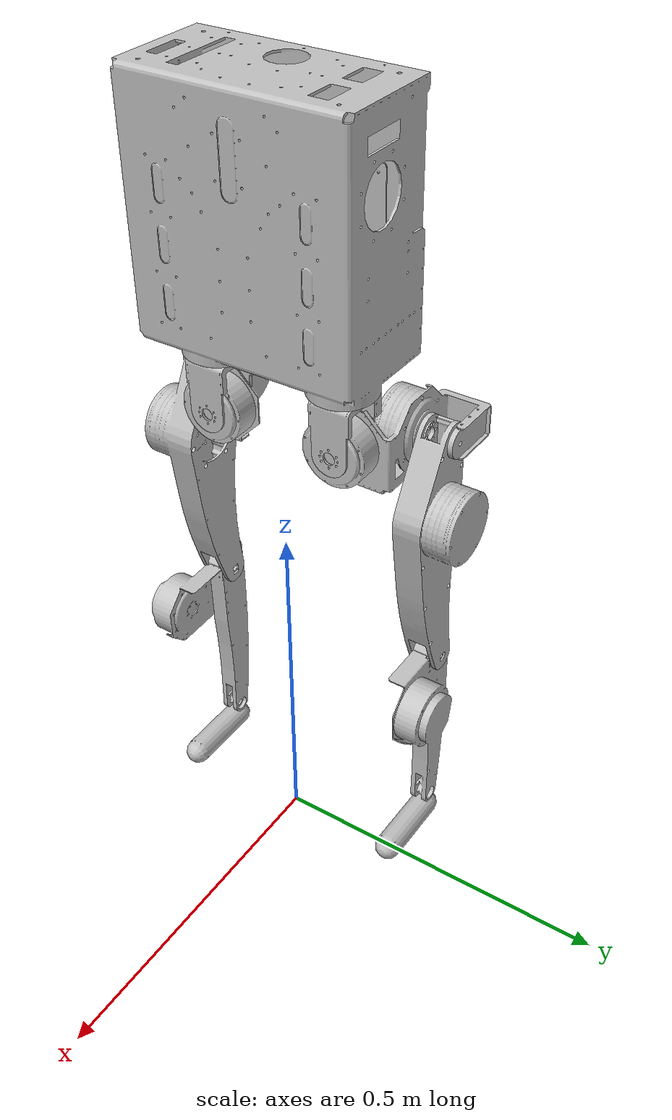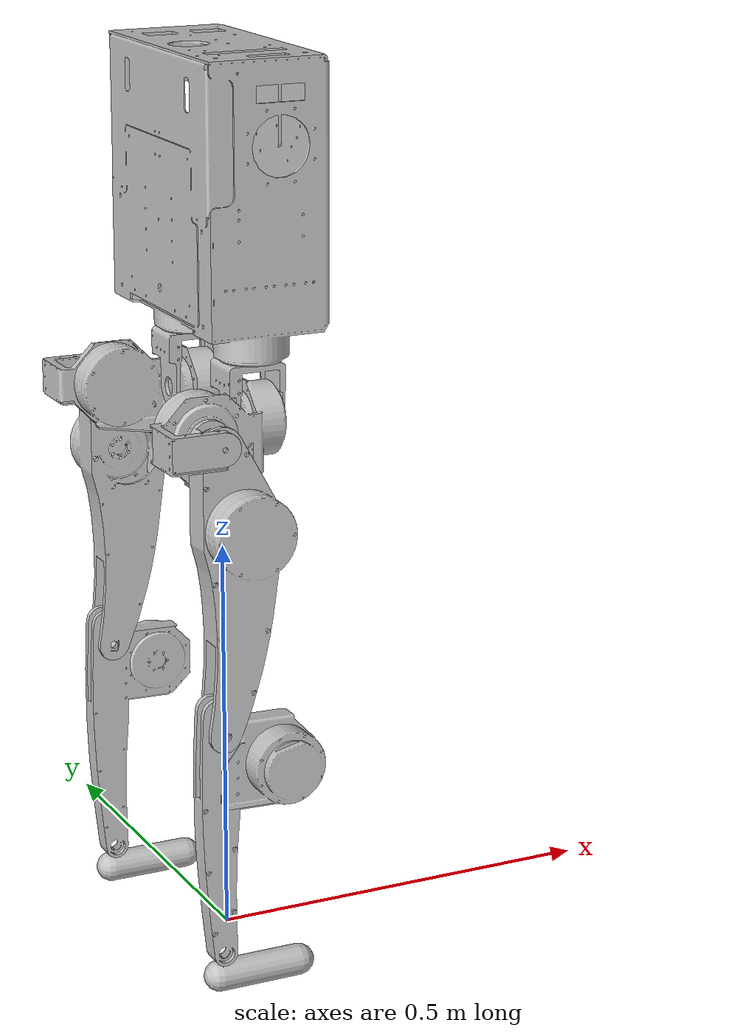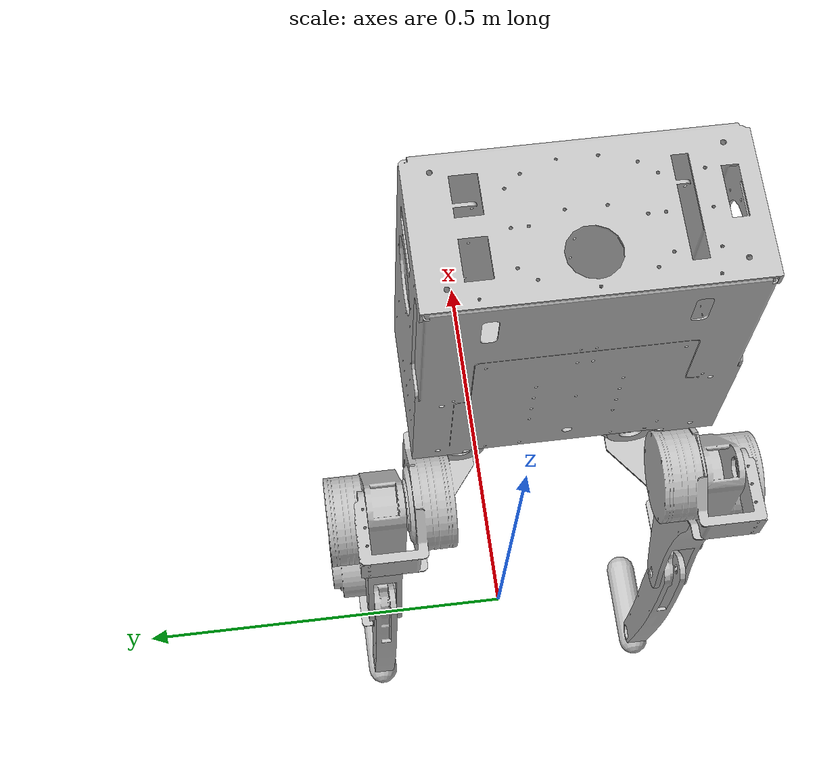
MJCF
<mujoco model="mevita">
  <compiler angle="radian"/>

  <asset>
    <mesh name="base_link"    file="meshes/base_link.STL"/>
    <mesh name="R_hip1_link"  file="meshes/R_hip1_link.STL"/>
    <mesh name="R_hip2_link"  file="meshes/R_hip2_link.STL"/>
    <mesh name="R_thigh_link" file="meshes/R_thigh_link.STL"/>
    <mesh name="R_calf_link"  file="meshes/R_calf_link.STL"/>
    <mesh name="R_foot_link"  file="meshes/R_foot_link.STL"/>
    <mesh name="L_hip1_link"  file="meshes/L_hip1_link.STL"/>
    <mesh name="L_hip2_link"  file="meshes/L_hip2_link.STL"/>
    <mesh name="L_thigh_link" file="meshes/L_thigh_link.STL"/>
    <mesh name="L_calf_link"  file="meshes/L_calf_link.STL"/>
    <mesh name="L_foot_link"  file="meshes/L_foot_link.STL"/>
  </asset>

  <worldbody>
    <body name="base_link" pos="0.0 0.0 0.953">
      <inertial pos="0.00928612 0.0 -0.0205788" quat="0.999988 -0.00483306 0.000392882 0.000118328" mass="8.0958" diaginertia="0.0584398 0.0379003 0.0334282"/>
      <joint name="base_joint" type="free" limited="false" actuatorfrclimited="false"/>
      <geom name="base_link" type="mesh" rgba="0.752941 0.752941 0.752941 1" mesh="base_link"/>
      <site name="base_link"/>
      <body name="R_hip1_link" pos="0 -0.091 -0.19905">
        <inertial pos="-0.011628 2.24199e-05 -0.0324188" quat="0.676779 -0.204837 -0.204831 0.676798" mass="0.195652" diaginertia="0.000168931 0.000147288 8.42578e-05"/>
        <joint name="R_hip_y" pos="0 0 0" axis="0 0 1" range="-1.0472 1.0472" actuatorfrcrange="-25 25" armature="4.14e-3"/>
        <geom name="R_hip1_link" type="mesh" rgba="0.752941 0.752941 0.752941 1" mesh="R_hip1_link"/>
        <body name="R_hip2_link" pos="0.028 0 -0.071">
          <inertial pos="-0.0848242 -0.0330786 -0.00239928" quat="0.348132 0.434935 0.644932 0.523162" mass="2.06273" diaginertia="0.00271558 0.00225942 0.00179094"/>
          <joint name="R_hip_r" pos="0 0 0" axis="1 0 0" range="-0.4538 0.4538" actuatorfrcrange="-25 25" armature="4.14e-3"/>
          <geom name="R_hip2_link" type="mesh" rgba="0.752941 0.752941 0.752941 1" mesh="R_hip2_link"/>
          <body name="R_thigh_link" pos="-0.11155 -0.0665 0">
            <inertial pos="0.0217259 -0.0386182 -0.127458" quat="0.706871 -0.00448149 -0.00410889 0.707316" mass="2.02695" diaginertia="0.0109864 0.00986959 0.00152478"/>
            <joint name="R_hip_p" pos="0 0 0" axis="0 1 0" range="-3.1416 0.733" actuatorfrcrange="-48 48" armature="10.02e-3"/>
            <geom name="R_thigh_link" type="mesh" rgba="0.752941 0.752941 0.752941 1" mesh="R_thigh_link"/>
            <body name="R_calf_link" pos="0 -0.007 -0.35">
              <inertial pos="0.0388671 -0.0275443 -0.0744041" quat="0.709839 0.0115854 0.0155059 0.704098" mass="1.32255" diaginertia="0.00558024 0.00518984 0.000615996"/>
              <joint name="R_knee_p" pos="0 0 0" axis="0 1 0" range="-0.349 2.7925" actuatorfrcrange="-48 48" armature="10.02e-3"/>
              <geom name="R_calf_link" type="mesh" rgba="0.752941 0.752941 0.752941 1" mesh="R_calf_link"/>
              <body name="R_foot_link" pos="0 0.0055 -0.281417">
                <inertial pos="0.034127 -0.0190532 -0.0172244" quat="0.459151 0.537731 0.537874 0.45904" mass="0.208121" diaginertia="0.000155411 0.000147351 2.41065e-05"/>
                <joint name="R_ankle_p" pos="0 0 0" axis="0 1 0" range="-1.2217 1.0123" actuatorfrcrange="-25 25" armature="4.14e-3"/>
                <geom name="R_foot_link" type="capsule" rgba="0.752941 0.752941 0.752941 1" size="0.01916 0.052" pos="0.048 -0.01916 -0.03141" quat="0 0.706825 0 0.707388"/>
              </body>
            </body>
          </body>
        </body>
      </body>
      <body name="L_hip1_link" pos="0 0.091 -0.19905">
        <inertial pos="-0.011628 2.24199e-05 -0.0324188" quat="0.676779 -0.204837 -0.204831 0.676798" mass="0.195652" diaginertia="0.000168931 0.000147288 8.42578e-05"/>
        <joint name="L_hip_y" pos="0 0 0" axis="0 0 1" range="-1.0472 1.0472" actuatorfrcrange="-25 25" armature="4.14e-3"/>
        <geom name="L_hip1_link" type="mesh" rgba="0.752941 0.752941 0.752941 1" mesh="L_hip1_link"/>
        <body name="L_hip2_link" pos="0.028 0 -0.071">
          <inertial pos="-0.0848242 0.033044 -0.00243198" quat="0.521602 0.645715 0.436638 0.346888" mass="2.06273" diaginertia="0.002714 0.00226095 0.001791"/>
          <joint name="L_hip_r" pos="0 0 0" axis="1 0 0" range="-0.4538 0.4538" actuatorfrcrange="-25 25" armature="4.14e-3"/>
          <geom name="L_hip2_link" type="mesh" rgba="0.752941 0.752941 0.752941 1" mesh="L_hip2_link"/>
          <body name="L_thigh_link" pos="-0.11155 0.0665 0">
            <inertial pos="0.0217097 0.0386182 -0.12743" quat="0.707288 -0.00406213 -0.00444652 0.7069" mass="2.02695" diaginertia="0.0109864 0.00987117 0.0015232"/>
            <joint name="L_hip_p" pos="0 0 0" axis="0 1 0" range="-3.1416 0.733" actuatorfrcrange="-48 48" armature="10.02e-3"/>
            <geom name="L_thigh_link" type="mesh" rgba="0.752941 0.752941 0.752941 1" mesh="L_thigh_link"/>
            <body name="L_calf_link" pos="0 0.007 -0.35">
              <inertial pos="0.0388984 0.0275443 -0.074354" quat="0.703314 0.0153454 0.0116081 0.710619" mass="1.32255" diaginertia="0.00558024 0.0051913 0.000614532"/>
              <joint name="L_knee_p" pos="0 0 0" axis="0 1 0" range="-0.349 2.7925" actuatorfrcrange="-48 48" armature="10.02e-3"/>
              <geom name="L_calf_link" type="mesh" rgba="0.752941 0.752941 0.752941 1" mesh="L_calf_link"/>
              <body name="L_foot_link" pos="0 -0.0055 -0.281417">
                <inertial pos="0.034127 0.0190532 -0.0172244" quat="0.459041 0.537874 0.537731 0.45915" mass="0.208121" diaginertia="0.000155411 0.000147351 2.41065e-05"/>
                <joint name="L_ankle_p" pos="0 0 0" axis="0 1 0" range="-1.2217 1.0123" actuatorfrcrange="-25 25" armature="4.14e-3"/>
                <geom name="L_foot_link" type="capsule" rgba="0.752941 0.752941 0.752941 1" size="0.01916 0.052" pos="0.048 0.01916 -0.03141" quat="0 0.706825 0 0.707388"/>
              </body>
            </body>
          </body>
        </body>
      </body>
    </body>
  </worldbody>
</mujoco>
